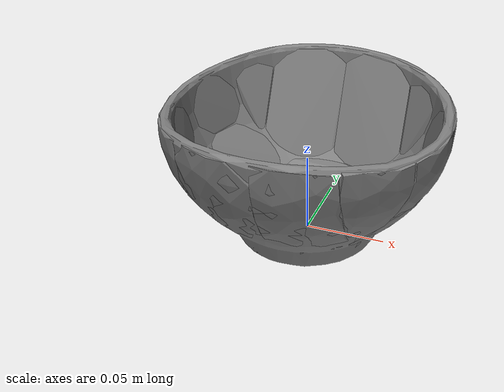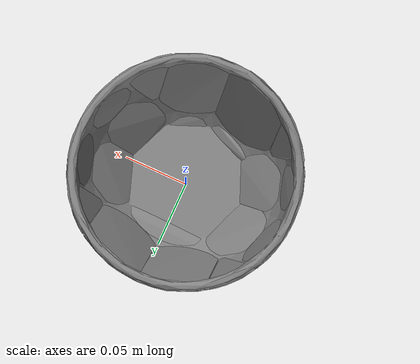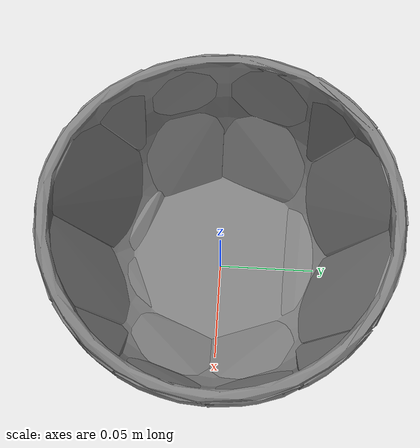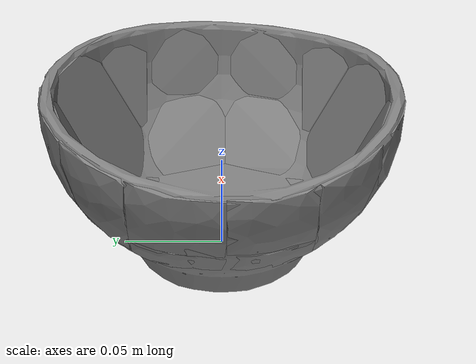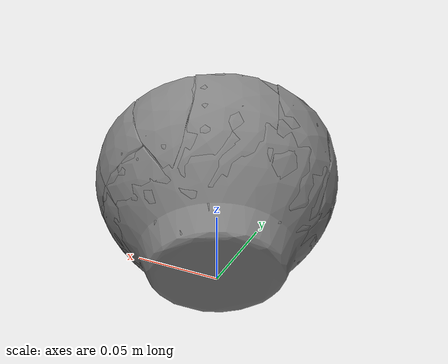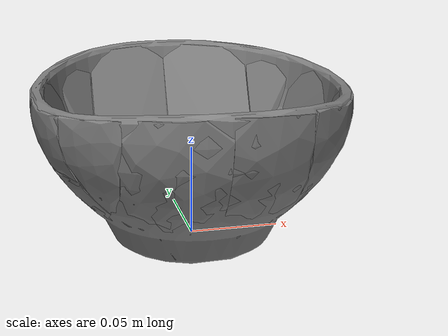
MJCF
<mujoco model="bowl3">
  <asset>
    <mesh file="../../meshes/train/bowl3/simple_mesh.stl" name="bowl3_mesh" scale="1 1 1"/>
    <mesh file="../../meshes/train/bowl3/bowl3_hull_1.stl" name="bowl3_hull_mesh_1" scale="1 1 1"/>
    <mesh file="../../meshes/train/bowl3/bowl3_hull_2.stl" name="bowl3_hull_mesh_2" scale="1 1 1"/>
    <mesh file="../../meshes/train/bowl3/bowl3_hull_3.stl" name="bowl3_hull_mesh_3" scale="1 1 1"/>
    <mesh file="../../meshes/train/bowl3/bowl3_hull_4.stl" name="bowl3_hull_mesh_4" scale="1 1 1"/>
    <mesh file="../../meshes/train/bowl3/bowl3_hull_5.stl" name="bowl3_hull_mesh_5" scale="1 1 1"/>
    <mesh file="../../meshes/train/bowl3/bowl3_hull_6.stl" name="bowl3_hull_mesh_6" scale="1 1 1"/>
    <mesh file="../../meshes/train/bowl3/bowl3_hull_7.stl" name="bowl3_hull_mesh_7" scale="1 1 1"/>
    <mesh file="../../meshes/train/bowl3/bowl3_hull_8.stl" name="bowl3_hull_mesh_8" scale="1 1 1"/>
    <mesh file="../../meshes/train/bowl3/bowl3_hull_9.stl" name="bowl3_hull_mesh_9" scale="1 1 1"/>
    <mesh file="../../meshes/train/bowl3/bowl3_hull_10.stl" name="bowl3_hull_mesh_10" scale="1 1 1"/>
    <mesh file="../../meshes/train/bowl3/bowl3_hull_11.stl" name="bowl3_hull_mesh_11" scale="1 1 1"/>
    <mesh file="../../meshes/train/bowl3/bowl3_hull_12.stl" name="bowl3_hull_mesh_12" scale="1 1 1"/>
    <mesh file="../../meshes/train/bowl3/bowl3_hull_13.stl" name="bowl3_hull_mesh_13" scale="1 1 1"/>
    <mesh file="../../meshes/train/bowl3/bowl3_hull_14.stl" name="bowl3_hull_mesh_14" scale="1 1 1"/>
    <mesh file="../../meshes/train/bowl3/bowl3_hull_15.stl" name="bowl3_hull_mesh_15" scale="1 1 1"/>
    <mesh file="../../meshes/train/bowl3/bowl3_hull_16.stl" name="bowl3_hull_mesh_16" scale="1 1 1"/>
    <mesh file="../../meshes/train/bowl3/bowl3_hull_17.stl" name="bowl3_hull_mesh_17" scale="1 1 1"/>
    <mesh file="../../meshes/train/bowl3/bowl3_hull_18.stl" name="bowl3_hull_mesh_18" scale="1 1 1"/>
    <mesh file="../../meshes/train/bowl3/bowl3_hull_19.stl" name="bowl3_hull_mesh_19" scale="1 1 1"/>
    <mesh file="../../meshes/train/bowl3/bowl3_hull_20.stl" name="bowl3_hull_mesh_20" scale="1 1 1"/>
  </asset>
  <worldbody>
    <body>
      <body name="object">
        <geom pos="0 0 0" mesh="bowl3_mesh" type="mesh" contype="0" conaffinity="0" group="1"/>
        <geom pos="0 0 0" mesh="bowl3_hull_mesh_1" type="mesh" margin="0.001" solimp="0.998 0.998 0.001" solref="0.001 1" density="2000" friction="0.95 0.3 0.1" group="0" condim="4"/>
        <geom pos="0 0 0" mesh="bowl3_hull_mesh_2" type="mesh" margin="0.001" solimp="0.998 0.998 0.001" solref="0.001 1" density="2000" friction="0.95 0.3 0.1" group="0" condim="4"/>
        <geom pos="0 0 0" mesh="bowl3_hull_mesh_3" type="mesh" margin="0.001" solimp="0.998 0.998 0.001" solref="0.001 1" density="2000" friction="0.95 0.3 0.1" group="0" condim="4"/>
        <geom pos="0 0 0" mesh="bowl3_hull_mesh_4" type="mesh" margin="0.001" solimp="0.998 0.998 0.001" solref="0.001 1" density="2000" friction="0.95 0.3 0.1" group="0" condim="4"/>
        <geom pos="0 0 0" mesh="bowl3_hull_mesh_5" type="mesh" margin="0.001" solimp="0.998 0.998 0.001" solref="0.001 1" density="2000" friction="0.95 0.3 0.1" group="0" condim="4"/>
        <geom pos="0 0 0" mesh="bowl3_hull_mesh_6" type="mesh" margin="0.001" solimp="0.998 0.998 0.001" solref="0.001 1" density="2000" friction="0.95 0.3 0.1" group="0" condim="4"/>
        <geom pos="0 0 0" mesh="bowl3_hull_mesh_7" type="mesh" margin="0.001" solimp="0.998 0.998 0.001" solref="0.001 1" density="2000" friction="0.95 0.3 0.1" group="0" condim="4"/>
        <geom pos="0 0 0" mesh="bowl3_hull_mesh_8" type="mesh" margin="0.001" solimp="0.998 0.998 0.001" solref="0.001 1" density="2000" friction="0.95 0.3 0.1" group="0" condim="4"/>
        <geom pos="0 0 0" mesh="bowl3_hull_mesh_9" type="mesh" margin="0.001" solimp="0.998 0.998 0.001" solref="0.001 1" density="2000" friction="0.95 0.3 0.1" group="0" condim="4"/>
        <geom pos="0 0 0" mesh="bowl3_hull_mesh_10" type="mesh" margin="0.001" solimp="0.998 0.998 0.001" solref="0.001 1" density="2000" friction="0.95 0.3 0.1" group="0" condim="4"/>
        <geom pos="0 0 0" mesh="bowl3_hull_mesh_11" type="mesh" margin="0.001" solimp="0.998 0.998 0.001" solref="0.001 1" density="2000" friction="0.95 0.3 0.1" group="0" condim="4"/>
        <geom pos="0 0 0" mesh="bowl3_hull_mesh_12" type="mesh" margin="0.001" solimp="0.998 0.998 0.001" solref="0.001 1" density="2000" friction="0.95 0.3 0.1" group="0" condim="4"/>
        <geom pos="0 0 0" mesh="bowl3_hull_mesh_13" type="mesh" margin="0.001" solimp="0.998 0.998 0.001" solref="0.001 1" density="2000" friction="0.95 0.3 0.1" group="0" condim="4"/>
        <geom pos="0 0 0" mesh="bowl3_hull_mesh_14" type="mesh" margin="0.001" solimp="0.998 0.998 0.001" solref="0.001 1" density="2000" friction="0.95 0.3 0.1" group="0" condim="4"/>
        <geom pos="0 0 0" mesh="bowl3_hull_mesh_15" type="mesh" margin="0.001" solimp="0.998 0.998 0.001" solref="0.001 1" density="2000" friction="0.95 0.3 0.1" group="0" condim="4"/>
        <geom pos="0 0 0" mesh="bowl3_hull_mesh_16" type="mesh" margin="0.001" solimp="0.998 0.998 0.001" solref="0.001 1" density="2000" friction="0.95 0.3 0.1" group="0" condim="4"/>
        <geom pos="0 0 0" mesh="bowl3_hull_mesh_17" type="mesh" margin="0.001" solimp="0.998 0.998 0.001" solref="0.001 1" density="2000" friction="0.95 0.3 0.1" group="0" condim="4"/>
        <geom pos="0 0 0" mesh="bowl3_hull_mesh_18" type="mesh" margin="0.001" solimp="0.998 0.998 0.001" solref="0.001 1" density="2000" friction="0.95 0.3 0.1" group="0" condim="4"/>
        <geom pos="0 0 0" mesh="bowl3_hull_mesh_19" type="mesh" margin="0.001" solimp="0.998 0.998 0.001" solref="0.001 1" density="2000" friction="0.95 0.3 0.1" group="0" condim="4"/>
        <geom pos="0 0 0" mesh="bowl3_hull_mesh_20" type="mesh" margin="0.001" solimp="0.998 0.998 0.001" solref="0.001 1" density="2000" friction="0.95 0.3 0.1" group="0" condim="4"/>
      </body>
      <site rgba="0 0 0 0" size="0.005" pos="0 0 -0.001" name="bottom_site"/>
      <site rgba="0 0 0 0" size="0.005" pos="0 0 0.02" name="top_site"/>
      <site rgba="0 0 0 0" size="0.005" pos="0.0375 0.02 0" name="horizontal_radius_site"/>
    </body>
  </worldbody>
</mujoco>
